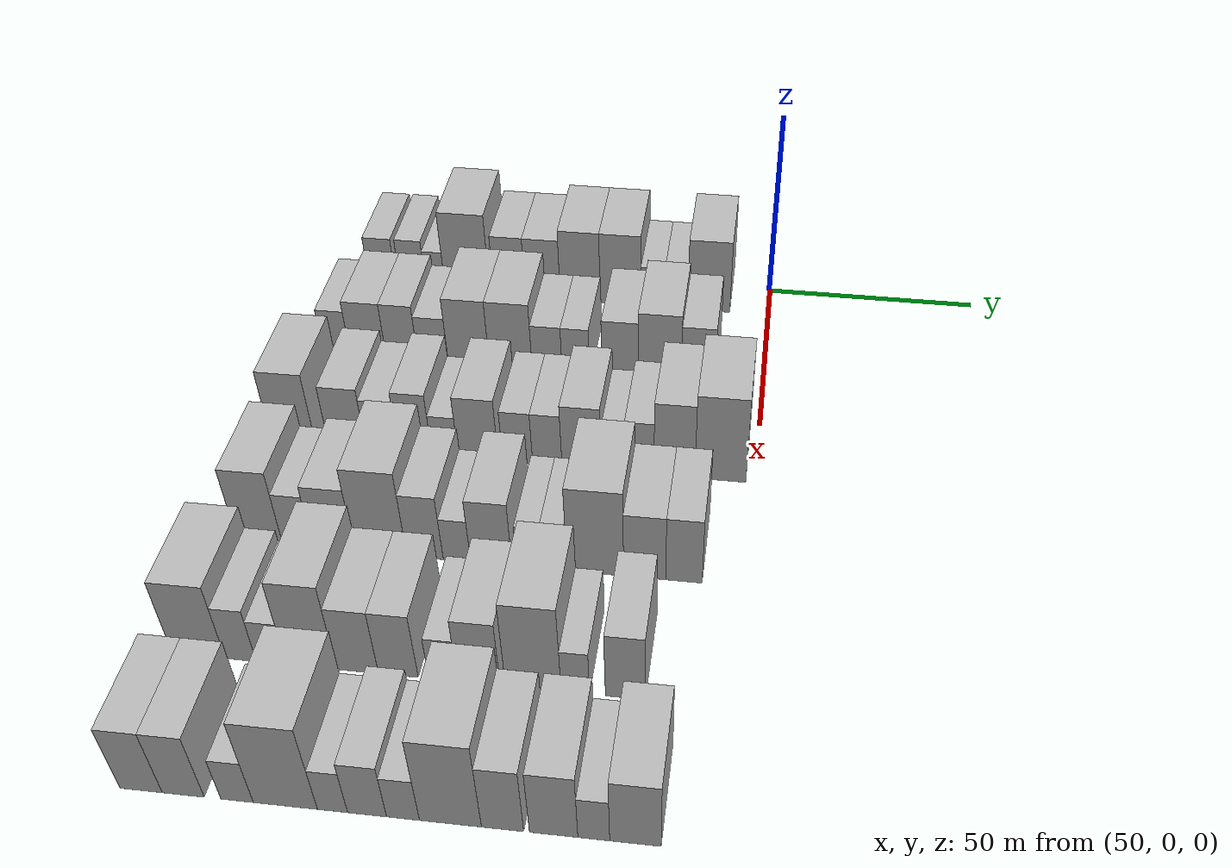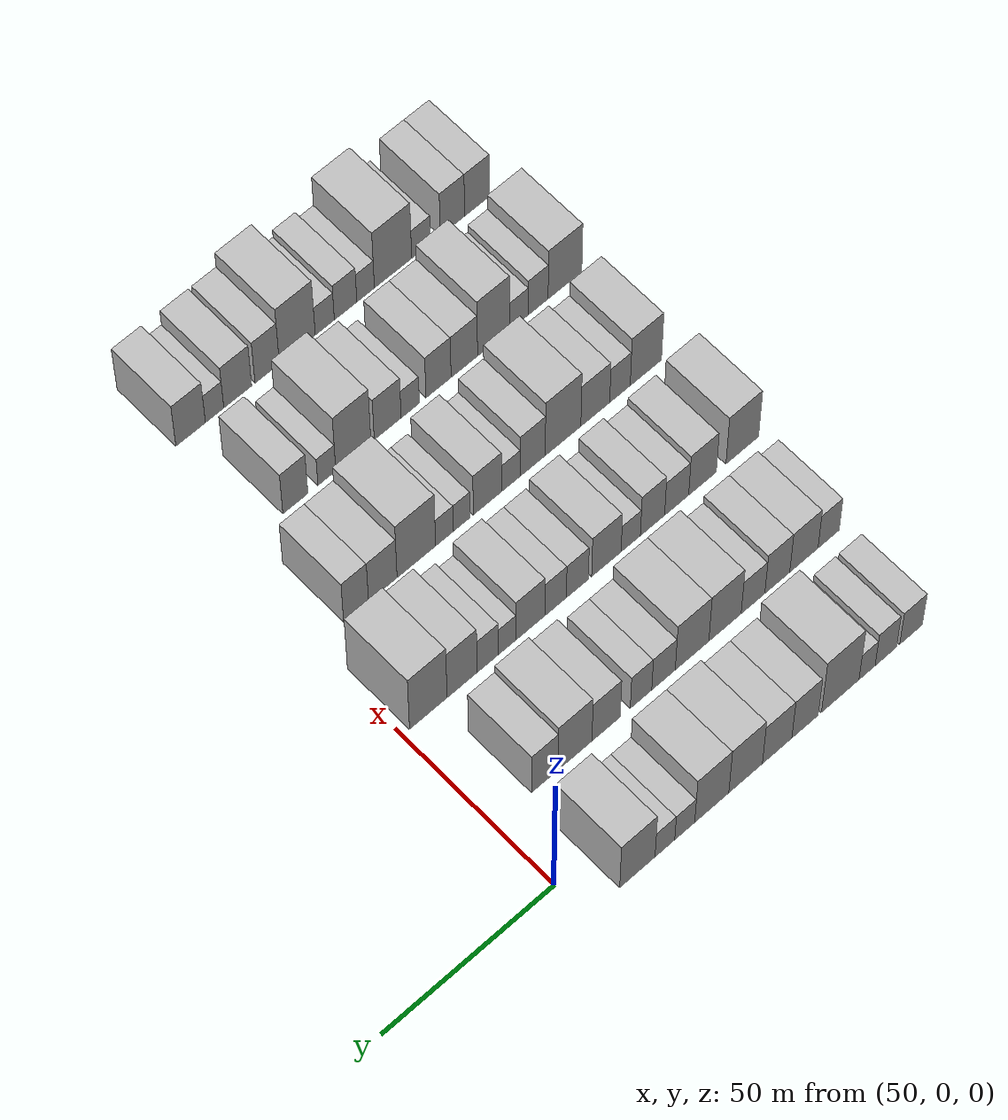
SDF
<sdf version="1.6">
 <world name="default">
  <model name="building_47">
   <static>1</static>
   <pose>50.0000 -97.5472 0 0.000000 0.000000 0.000000</pose>
   <link name="link">
    <pose>0 0 7.50 0 0 0</pose>
    <collision name="collision"><geometry><box><size>20.0000 7.0221 15.0000</size></box></geometry></collision>
    <visual name="visual">
     <cast_shadows>0</cast_shadows>
     <geometry><box><size>20.0000 7.0221 15.0000</size></box></geometry>
     <material>
      <script>
       <uri>model://HANNAS_wall/materials/scripts</uri>
       <uri>model://HANNAS_wall/materials/textures</uri>
       <name>vrc/HANNAS_wall</name>
      </script>
     </material>
    </visual>
   </link>
  </model>
  <model name="building_48">
   <static>1</static>
   <pose>50.0000 -89.7438 0 0.000000 0.000000 0.000000</pose>
   <link name="link">
    <pose>0 0 7.50 0 0 0</pose>
    <collision name="collision"><geometry><box><size>20.0000 6.5846 15.0000</size></box></geometry></collision>
    <visual name="visual">
     <cast_shadows>0</cast_shadows>
     <geometry><box><size>20.0000 6.5846 15.0000</size></box></geometry>
     <material>
      <script>
       <uri>model://HANNAS_wall/materials/scripts</uri>
       <uri>model://HANNAS_wall/materials/textures</uri>
       <name>vrc/HANNAS_wall</name>
      </script>
     </material>
    </visual>
   </link>
  </model>
  <model name="building_49">
   <static>1</static>
   <pose>50.0000 -83.9717 0 0.000000 0.000000 0.000000</pose>
   <link name="link">
    <pose>0 0 6.00 0 0 0</pose>
    <collision name="collision"><geometry><box><size>20.0000 4.9595 12.0000</size></box></geometry></collision>
    <visual name="visual">
     <cast_shadows>0</cast_shadows>
     <geometry><box><size>20.0000 4.9595 12.0000</size></box></geometry>
     <material>
      <script>
       <uri>model://HANNAS_wall/materials/scripts</uri>
       <uri>model://HANNAS_wall/materials/textures</uri>
       <name>vrc/HANNAS_wall</name>
      </script>
     </material>
    </visual>
   </link>
  </model>
  <model name="building_50">
   <static>1</static>
   <pose>50.0000 -75.7507 0 0.000000 0.000000 0.000000</pose>
   <link name="link">
    <pose>0 0 12.00 0 0 0</pose>
    <collision name="collision"><geometry><box><size>20.0000 11.4825 24.0000</size></box></geometry></collision>
    <visual name="visual">
     <cast_shadows>0</cast_shadows>
     <geometry><box><size>20.0000 11.4825 24.0000</size></box></geometry>
     <material>
      <script>
       <uri>model://HANNAS_wall/materials/scripts</uri>
       <uri>model://HANNAS_wall/materials/textures</uri>
       <name>vrc/HANNAS_wall</name>
      </script>
     </material>
    </visual>
   </link>
  </model>
  <model name="building_51">
   <static>1</static>
   <pose>50.0000 -64.9998 0 0.000000 0.000000 0.000000</pose>
   <link name="link">
    <pose>0 0 9.00 0 0 0</pose>
    <collision name="collision"><geometry><box><size>20.0000 8.0193 18.0000</size></box></geometry></collision>
    <visual name="visual">
     <cast_shadows>0</cast_shadows>
     <geometry><box><size>20.0000 8.0193 18.0000</size></box></geometry>
     <material>
      <script>
       <uri>model://HANNAS_wall/materials/scripts</uri>
       <uri>model://HANNAS_wall/materials/textures</uri>
       <name>vrc/HANNAS_wall</name>
      </script>
     </material>
    </visual>
   </link>
  </model>
  <model name="building_52">
   <static>1</static>
   <pose>50.0000 -56.5427 0 0.000000 0.000000 0.000000</pose>
   <link name="link">
    <pose>0 0 9.00 0 0 0</pose>
    <collision name="collision"><geometry><box><size>20.0000 8.8949 18.0000</size></box></geometry></collision>
    <visual name="visual">
     <cast_shadows>0</cast_shadows>
     <geometry><box><size>20.0000 8.8949 18.0000</size></box></geometry>
     <material>
      <script>
       <uri>model://HANNAS_wall/materials/scripts</uri>
       <uri>model://HANNAS_wall/materials/textures</uri>
       <name>vrc/HANNAS_wall</name>
      </script>
     </material>
    </visual>
   </link>
  </model>
  <model name="building_53">
   <static>1</static>
   <pose>50.0000 -47.0424 0 0.000000 0.000000 0.000000</pose>
   <link name="link">
    <pose>0 0 10.50 0 0 0</pose>
    <collision name="collision"><geometry><box><size>20.0000 10.1057 21.0000</size></box></geometry></collision>
    <visual name="visual">
     <cast_shadows>0</cast_shadows>
     <geometry><box><size>20.0000 10.1057 21.0000</size></box></geometry>
     <material>
      <script>
       <uri>model://HANNAS_wall/materials/scripts</uri>
       <uri>model://HANNAS_wall/materials/textures</uri>
       <name>vrc/HANNAS_wall</name>
      </script>
     </material>
    </visual>
   </link>
  </model>
  <model name="building_54">
   <static>1</static>
   <pose>50.0000 -36.8938 0 0.000000 0.000000 0.000000</pose>
   <link name="link">
    <pose>0 0 10.50 0 0 0</pose>
    <collision name="collision"><geometry><box><size>20.0000 10.1916 21.0000</size></box></geometry></collision>
    <visual name="visual">
     <cast_shadows>0</cast_shadows>
     <geometry><box><size>20.0000 10.1916 21.0000</size></box></geometry>
     <material>
      <script>
       <uri>model://HANNAS_wall/materials/scripts</uri>
       <uri>model://HANNAS_wall/materials/textures</uri>
       <name>vrc/HANNAS_wall</name>
      </script>
     </material>
    </visual>
   </link>
  </model>
  <model name="building_55">
   <static>1</static>
   <pose>50.0000 -28.8318 0 0.000000 0.000000 0.000000</pose>
   <link name="link">
    <pose>0 0 6.00 0 0 0</pose>
    <collision name="collision"><geometry><box><size>20.0000 5.9323 12.0000</size></box></geometry></collision>
    <visual name="visual">
     <cast_shadows>0</cast_shadows>
     <geometry><box><size>20.0000 5.9323 12.0000</size></box></geometry>
     <material>
      <script>
       <uri>model://HANNAS_wall/materials/scripts</uri>
       <uri>model://HANNAS_wall/materials/textures</uri>
       <name>vrc/HANNAS_wall</name>
      </script>
     </material>
    </visual>
   </link>
  </model>
  <model name="building_56">
   <static>1</static>
   <pose>50.0000 -22.9451 0 0.000000 0.000000 0.000000</pose>
   <link name="link">
    <pose>0 0 6.00 0 0 0</pose>
    <collision name="collision"><geometry><box><size>20.0000 5.8412 12.0000</size></box></geometry></collision>
    <visual name="visual">
     <cast_shadows>0</cast_shadows>
     <geometry><box><size>20.0000 5.8412 12.0000</size></box></geometry>
     <material>
      <script>
       <uri>model://HANNAS_wall/materials/scripts</uri>
       <uri>model://HANNAS_wall/materials/textures</uri>
       <name>vrc/HANNAS_wall</name>
      </script>
     </material>
    </visual>
   </link>
  </model>
  <model name="building_57">
   <static>1</static>
   <pose>50.0000 -14.8124 0 0.000000 0.000000 0.000000</pose>
   <link name="link">
    <pose>0 0 10.50 0 0 0</pose>
    <collision name="collision"><geometry><box><size>20.0000 10.4241 21.0000</size></box></geometry></collision>
    <visual name="visual">
     <cast_shadows>0</cast_shadows>
     <geometry><box><size>20.0000 10.4241 21.0000</size></box></geometry>
     <material>
      <script>
       <uri>model://HANNAS_wall/materials/scripts</uri>
       <uri>model://HANNAS_wall/materials/textures</uri>
       <name>vrc/HANNAS_wall</name>
      </script>
     </material>
    </visual>
   </link>
  </model>
  <model name="building_165">
   <static>1</static>
   <pose>79.0000 -100.9754 0 0.000000 0.000000 0.000000</pose>
   <link name="link">
    <pose>0 0 7.50 0 0 0</pose>
    <collision name="collision"><geometry><box><size>20.0000 6.5726 15.0000</size></box></geometry></collision>
    <visual name="visual">
     <cast_shadows>0</cast_shadows>
     <geometry><box><size>20.0000 6.5726 15.0000</size></box></geometry>
     <material>
      <script>
       <uri>model://HANNAS_wall/materials/scripts</uri>
       <uri>model://HANNAS_wall/materials/textures</uri>
       <name>vrc/HANNAS_wall</name>
      </script>
     </material>
    </visual>
   </link>
  </model>
  <model name="building_166">
   <static>1</static>
   <pose>79.0000 -93.3175 0 0.000000 0.000000 0.000000</pose>
   <link name="link">
    <pose>0 0 9.00 0 0 0</pose>
    <collision name="collision"><geometry><box><size>20.0000 8.7433 18.0000</size></box></geometry></collision>
    <visual name="visual">
     <cast_shadows>0</cast_shadows>
     <geometry><box><size>20.0000 8.7433 18.0000</size></box></geometry>
     <material>
      <script>
       <uri>model://HANNAS_wall/materials/scripts</uri>
       <uri>model://HANNAS_wall/materials/textures</uri>
       <name>vrc/HANNAS_wall</name>
      </script>
     </material>
    </visual>
   </link>
  </model>
  <model name="building_167">
   <static>1</static>
   <pose>79.0000 -85.1129 0 0.000000 0.000000 0.000000</pose>
   <link name="link">
    <pose>0 0 9.00 0 0 0</pose>
    <collision name="collision"><geometry><box><size>20.0000 7.6660 18.0000</size></box></geometry></collision>
    <visual name="visual">
     <cast_shadows>0</cast_shadows>
     <geometry><box><size>20.0000 7.6660 18.0000</size></box></geometry>
     <material>
      <script>
       <uri>model://HANNAS_wall/materials/scripts</uri>
       <uri>model://HANNAS_wall/materials/textures</uri>
       <name>vrc/HANNAS_wall</name>
      </script>
     </material>
    </visual>
   </link>
  </model>
  <model name="building_168">
   <static>1</static>
   <pose>79.0000 -77.6458 0 0.000000 0.000000 0.000000</pose>
   <link name="link">
    <pose>0 0 7.50 0 0 0</pose>
    <collision name="collision"><geometry><box><size>20.0000 7.2683 15.0000</size></box></geometry></collision>
    <visual name="visual">
     <cast_shadows>0</cast_shadows>
     <geometry><box><size>20.0000 7.2683 15.0000</size></box></geometry>
     <material>
      <script>
       <uri>model://HANNAS_wall/materials/scripts</uri>
       <uri>model://HANNAS_wall/materials/textures</uri>
       <name>vrc/HANNAS_wall</name>
      </script>
     </material>
    </visual>
   </link>
  </model>
  <model name="building_169">
   <static>1</static>
   <pose>79.0000 -69.0842 0 0.000000 0.000000 0.000000</pose>
   <link name="link">
    <pose>0 0 10.50 0 0 0</pose>
    <collision name="collision"><geometry><box><size>20.0000 9.8548 21.0000</size></box></geometry></collision>
    <visual name="visual">
     <cast_shadows>0</cast_shadows>
     <geometry><box><size>20.0000 9.8548 21.0000</size></box></geometry>
     <material>
      <script>
       <uri>model://HANNAS_wall/materials/scripts</uri>
       <uri>model://HANNAS_wall/materials/textures</uri>
       <name>vrc/HANNAS_wall</name>
      </script>
     </material>
    </visual>
   </link>
  </model>
  <model name="building_170">
   <static>1</static>
   <pose>79.0000 -59.0692 0 0.000000 0.000000 0.000000</pose>
   <link name="link">
    <pose>0 0 10.50 0 0 0</pose>
    <collision name="collision"><geometry><box><size>20.0000 10.1751 21.0000</size></box></geometry></collision>
    <visual name="visual">
     <cast_shadows>0</cast_shadows>
     <geometry><box><size>20.0000 10.1751 21.0000</size></box></geometry>
     <material>
      <script>
       <uri>model://HANNAS_wall/materials/scripts</uri>
       <uri>model://HANNAS_wall/materials/textures</uri>
       <name>vrc/HANNAS_wall</name>
      </script>
     </material>
    </visual>
   </link>
  </model>
  <model name="building_171">
   <static>1</static>
   <pose>79.0000 -50.4391 0 0.000000 0.000000 0.000000</pose>
   <link name="link">
    <pose>0 0 7.50 0 0 0</pose>
    <collision name="collision"><geometry><box><size>20.0000 7.0851 15.0000</size></box></geometry></collision>
    <visual name="visual">
     <cast_shadows>0</cast_shadows>
     <geometry><box><size>20.0000 7.0851 15.0000</size></box></geometry>
     <material>
      <script>
       <uri>model://HANNAS_wall/materials/scripts</uri>
       <uri>model://HANNAS_wall/materials/textures</uri>
       <name>vrc/HANNAS_wall</name>
      </script>
     </material>
    </visual>
   </link>
  </model>
  <model name="building_172">
   <static>1</static>
   <pose>79.0000 -43.6659 0 0.000000 0.000000 0.000000</pose>
   <link name="link">
    <pose>0 0 7.50 0 0 0</pose>
    <collision name="collision"><geometry><box><size>20.0000 6.4614 15.0000</size></box></geometry></collision>
    <visual name="visual">
     <cast_shadows>0</cast_shadows>
     <geometry><box><size>20.0000 6.4614 15.0000</size></box></geometry>
     <material>
      <script>
       <uri>model://HANNAS_wall/materials/scripts</uri>
       <uri>model://HANNAS_wall/materials/textures</uri>
       <name>vrc/HANNAS_wall</name>
      </script>
     </material>
    </visual>
   </link>
  </model>
  <model name="building_173">
   <static>1</static>
   <pose>79.0000 -33.2063 0 0.000000 0.000000 0.000000</pose>
   <link name="link">
    <pose>0 0 9.00 0 0 0</pose>
    <collision name="collision"><geometry><box><size>20.0000 8.4579 18.0000</size></box></geometry></collision>
    <visual name="visual">
     <cast_shadows>0</cast_shadows>
     <geometry><box><size>20.0000 8.4579 18.0000</size></box></geometry>
     <material>
      <script>
       <uri>model://HANNAS_wall/materials/scripts</uri>
       <uri>model://HANNAS_wall/materials/textures</uri>
       <name>vrc/HANNAS_wall</name>
      </script>
     </material>
    </visual>
   </link>
  </model>
  <model name="building_174">
   <static>1</static>
   <pose>79.0000 -23.9600 0 0.000000 0.000000 0.000000</pose>
   <link name="link">
    <pose>0 0 10.50 0 0 0</pose>
    <collision name="collision"><geometry><box><size>20.0000 10.0347 21.0000</size></box></geometry></collision>
    <visual name="visual">
     <cast_shadows>0</cast_shadows>
     <geometry><box><size>20.0000 10.0347 21.0000</size></box></geometry>
     <material>
      <script>
       <uri>model://HANNAS_wall/materials/scripts</uri>
       <uri>model://HANNAS_wall/materials/textures</uri>
       <name>vrc/HANNAS_wall</name>
      </script>
     </material>
    </visual>
   </link>
  </model>
  <model name="building_175">
   <static>1</static>
   <pose>79.0000 -15.0271 0 0.000000 0.000000 0.000000</pose>
   <link name="link">
    <pose>0 0 9.00 0 0 0</pose>
    <collision name="collision"><geometry><box><size>20.0000 7.8310 18.0000</size></box></geometry></collision>
    <visual name="visual">
     <cast_shadows>0</cast_shadows>
     <geometry><box><size>20.0000 7.8310 18.0000</size></box></geometry>
     <material>
      <script>
       <uri>model://HANNAS_wall/materials/scripts</uri>
       <uri>model://HANNAS_wall/materials/textures</uri>
       <name>vrc/HANNAS_wall</name>
      </script>
     </material>
    </visual>
   </link>
  </model>
  <model name="building_280">
   <static>1</static>
   <pose>108.0000 -102.6939 0 0.000000 0.000000 0.000000</pose>
   <link name="link">
    <pose>0 0 10.50 0 0 0</pose>
    <collision name="collision"><geometry><box><size>20.0000 10.1477 21.0000</size></box></geometry></collision>
    <visual name="visual">
     <cast_shadows>0</cast_shadows>
     <geometry><box><size>20.0000 10.1477 21.0000</size></box></geometry>
     <material>
      <script>
       <uri>model://HANNAS_wall/materials/scripts</uri>
       <uri>model://HANNAS_wall/materials/textures</uri>
       <name>vrc/HANNAS_wall</name>
      </script>
     </material>
    </visual>
   </link>
  </model>
  <model name="building_281">
   <static>1</static>
   <pose>108.0000 -90.3553 0 0.000000 0.000000 0.000000</pose>
   <link name="link">
    <pose>0 0 9.00 0 0 0</pose>
    <collision name="collision"><geometry><box><size>20.0000 8.5295 18.0000</size></box></geometry></collision>
    <visual name="visual">
     <cast_shadows>0</cast_shadows>
     <geometry><box><size>20.0000 8.5295 18.0000</size></box></geometry>
     <material>
      <script>
       <uri>model://HANNAS_wall/materials/scripts</uri>
       <uri>model://HANNAS_wall/materials/textures</uri>
       <name>vrc/HANNAS_wall</name>
      </script>
     </material>
    </visual>
   </link>
  </model>
  <model name="building_282">
   <static>1</static>
   <pose>108.0000 -82.3877 0 0.000000 0.000000 0.000000</pose>
   <link name="link">
    <pose>0 0 7.50 0 0 0</pose>
    <collision name="collision"><geometry><box><size>20.0000 7.4057 15.0000</size></box></geometry></collision>
    <visual name="visual">
     <cast_shadows>0</cast_shadows>
     <geometry><box><size>20.0000 7.4057 15.0000</size></box></geometry>
     <material>
      <script>
       <uri>model://HANNAS_wall/materials/scripts</uri>
       <uri>model://HANNAS_wall/materials/textures</uri>
       <name>vrc/HANNAS_wall</name>
      </script>
     </material>
    </visual>
   </link>
  </model>
  <model name="building_283">
   <static>1</static>
   <pose>108.0000 -74.9669 0 0.000000 0.000000 0.000000</pose>
   <link name="link">
    <pose>0 0 9.00 0 0 0</pose>
    <collision name="collision"><geometry><box><size>20.0000 7.4359 18.0000</size></box></geometry></collision>
    <visual name="visual">
     <cast_shadows>0</cast_shadows>
     <geometry><box><size>20.0000 7.4359 18.0000</size></box></geometry>
     <material>
      <script>
       <uri>model://HANNAS_wall/materials/scripts</uri>
       <uri>model://HANNAS_wall/materials/textures</uri>
       <name>vrc/HANNAS_wall</name>
      </script>
     </material>
    </visual>
   </link>
  </model>
  <model name="building_284">
   <static>1</static>
   <pose>108.0000 -68.3087 0 0.000000 0.000000 0.000000</pose>
   <link name="link">
    <pose>0 0 6.00 0 0 0</pose>
    <collision name="collision"><geometry><box><size>20.0000 5.8803 12.0000</size></box></geometry></collision>
    <visual name="visual">
     <cast_shadows>0</cast_shadows>
     <geometry><box><size>20.0000 5.8803 12.0000</size></box></geometry>
     <material>
      <script>
       <uri>model://HANNAS_wall/materials/scripts</uri>
       <uri>model://HANNAS_wall/materials/textures</uri>
       <name>vrc/HANNAS_wall</name>
      </script>
     </material>
    </visual>
   </link>
  </model>
  <model name="building_285">
   <static>1</static>
   <pose>108.0000 -60.8905 0 0.000000 0.000000 0.000000</pose>
   <link name="link">
    <pose>0 0 9.00 0 0 0</pose>
    <collision name="collision"><geometry><box><size>20.0000 8.9561 18.0000</size></box></geometry></collision>
    <visual name="visual">
     <cast_shadows>0</cast_shadows>
     <geometry><box><size>20.0000 8.9561 18.0000</size></box></geometry>
     <material>
      <script>
       <uri>model://HANNAS_wall/materials/scripts</uri>
       <uri>model://HANNAS_wall/materials/textures</uri>
       <name>vrc/HANNAS_wall</name>
      </script>
     </material>
    </visual>
   </link>
  </model>
  <model name="building_286">
   <static>1</static>
   <pose>108.0000 -52.0968 0 0.000000 0.000000 0.000000</pose>
   <link name="link">
    <pose>0 0 7.50 0 0 0</pose>
    <collision name="collision"><geometry><box><size>20.0000 6.6314 15.0000</size></box></geometry></collision>
    <visual name="visual">
     <cast_shadows>0</cast_shadows>
     <geometry><box><size>20.0000 6.6314 15.0000</size></box></geometry>
     <material>
      <script>
       <uri>model://HANNAS_wall/materials/scripts</uri>
       <uri>model://HANNAS_wall/materials/textures</uri>
       <name>vrc/HANNAS_wall</name>
      </script>
     </material>
    </visual>
   </link>
  </model>
  <model name="building_287">
   <static>1</static>
   <pose>108.0000 -45.5331 0 0.000000 0.000000 0.000000</pose>
   <link name="link">
    <pose>0 0 7.50 0 0 0</pose>
    <collision name="collision"><geometry><box><size>20.0000 6.4959 15.0000</size></box></geometry></collision>
    <visual name="visual">
     <cast_shadows>0</cast_shadows>
     <geometry><box><size>20.0000 6.4959 15.0000</size></box></geometry>
     <material>
      <script>
       <uri>model://HANNAS_wall/materials/scripts</uri>
       <uri>model://HANNAS_wall/materials/textures</uri>
       <name>vrc/HANNAS_wall</name>
      </script>
     </material>
    </visual>
   </link>
  </model>
  <model name="building_288">
   <static>1</static>
   <pose>108.0000 -37.9837 0 0.000000 0.000000 0.000000</pose>
   <link name="link">
    <pose>0 0 9.00 0 0 0</pose>
    <collision name="collision"><geometry><box><size>20.0000 8.6028 18.0000</size></box></geometry></collision>
    <visual name="visual">
     <cast_shadows>0</cast_shadows>
     <geometry><box><size>20.0000 8.6028 18.0000</size></box></geometry>
     <material>
      <script>
       <uri>model://HANNAS_wall/materials/scripts</uri>
       <uri>model://HANNAS_wall/materials/textures</uri>
       <name>vrc/HANNAS_wall</name>
      </script>
     </material>
    </visual>
   </link>
  </model>
  <model name="building_289">
   <static>1</static>
   <pose>108.0000 -31.0672 0 0.000000 0.000000 0.000000</pose>
   <link name="link">
    <pose>0 0 6.00 0 0 0</pose>
    <collision name="collision"><geometry><box><size>20.0000 5.2302 12.0000</size></box></geometry></collision>
    <visual name="visual">
     <cast_shadows>0</cast_shadows>
     <geometry><box><size>20.0000 5.2302 12.0000</size></box></geometry>
     <material>
      <script>
       <uri>model://HANNAS_wall/materials/scripts</uri>
       <uri>model://HANNAS_wall/materials/textures</uri>
       <name>vrc/HANNAS_wall</name>
      </script>
     </material>
    </visual>
   </link>
  </model>
  <model name="building_290">
   <static>1</static>
   <pose>108.0000 -25.2629 0 0.000000 0.000000 0.000000</pose>
   <link name="link">
    <pose>0 0 7.50 0 0 0</pose>
    <collision name="collision"><geometry><box><size>20.0000 6.3784 15.0000</size></box></geometry></collision>
    <visual name="visual">
     <cast_shadows>0</cast_shadows>
     <geometry><box><size>20.0000 6.3784 15.0000</size></box></geometry>
     <material>
      <script>
       <uri>model://HANNAS_wall/materials/scripts</uri>
       <uri>model://HANNAS_wall/materials/textures</uri>
       <name>vrc/HANNAS_wall</name>
      </script>
     </material>
    </visual>
   </link>
  </model>
  <model name="building_291">
   <static>1</static>
   <pose>108.0000 -17.6246 0 0.000000 0.000000 0.000000</pose>
   <link name="link">
    <pose>0 0 10.50 0 0 0</pose>
    <collision name="collision"><geometry><box><size>20.0000 8.8982 21.0000</size></box></geometry></collision>
    <visual name="visual">
     <cast_shadows>0</cast_shadows>
     <geometry><box><size>20.0000 8.8982 21.0000</size></box></geometry>
     <material>
      <script>
       <uri>model://HANNAS_wall/materials/scripts</uri>
       <uri>model://HANNAS_wall/materials/textures</uri>
       <name>vrc/HANNAS_wall</name>
      </script>
     </material>
    </visual>
   </link>
  </model>
  <model name="building_292">
   <static>1</static>
   <pose>108.0000 -7.6535 0 0.000000 0.000000 0.000000</pose>
   <link name="link">
    <pose>0 0 12.00 0 0 0</pose>
    <collision name="collision"><geometry><box><size>20.0000 11.0440 24.0000</size></box></geometry></collision>
    <visual name="visual">
     <cast_shadows>0</cast_shadows>
     <geometry><box><size>20.0000 11.0440 24.0000</size></box></geometry>
     <material>
      <script>
       <uri>model://HANNAS_wall/materials/scripts</uri>
       <uri>model://HANNAS_wall/materials/textures</uri>
       <name>vrc/HANNAS_wall</name>
      </script>
     </material>
    </visual>
   </link>
  </model>
  <model name="building_396">
   <static>1</static>
   <pose>137.0000 -100.7394 0 0.000000 0.000000 0.000000</pose>
   <link name="link">
    <pose>0 0 10.50 0 0 0</pose>
    <collision name="collision"><geometry><box><size>20.0000 9.7139 21.0000</size></box></geometry></collision>
    <visual name="visual">
     <cast_shadows>0</cast_shadows>
     <geometry><box><size>20.0000 9.7139 21.0000</size></box></geometry>
     <material>
      <script>
       <uri>model://HANNAS_wall/materials/scripts</uri>
       <uri>model://HANNAS_wall/materials/textures</uri>
       <name>vrc/HANNAS_wall</name>
      </script>
     </material>
    </visual>
   </link>
  </model>
  <model name="building_397">
   <static>1</static>
   <pose>137.0000 -92.7031 0 0.000000 0.000000 0.000000</pose>
   <link name="link">
    <pose>0 0 7.50 0 0 0</pose>
    <collision name="collision"><geometry><box><size>20.0000 6.3588 15.0000</size></box></geometry></collision>
    <visual name="visual">
     <cast_shadows>0</cast_shadows>
     <geometry><box><size>20.0000 6.3588 15.0000</size></box></geometry>
     <material>
      <script>
       <uri>model://HANNAS_wall/materials/scripts</uri>
       <uri>model://HANNAS_wall/materials/textures</uri>
       <name>vrc/HANNAS_wall</name>
      </script>
     </material>
    </visual>
   </link>
  </model>
  <model name="building_398">
   <static>1</static>
   <pose>137.0000 -85.0697 0 0.000000 0.000000 0.000000</pose>
   <link name="link">
    <pose>0 0 9.00 0 0 0</pose>
    <collision name="collision"><geometry><box><size>20.0000 8.9081 18.0000</size></box></geometry></collision>
    <visual name="visual">
     <cast_shadows>0</cast_shadows>
     <geometry><box><size>20.0000 8.9081 18.0000</size></box></geometry>
     <material>
      <script>
       <uri>model://HANNAS_wall/materials/scripts</uri>
       <uri>model://HANNAS_wall/materials/textures</uri>
       <name>vrc/HANNAS_wall</name>
      </script>
     </material>
    </visual>
   </link>
  </model>
  <model name="building_399">
   <static>1</static>
   <pose>137.0000 -75.1561 0 0.000000 0.000000 0.000000</pose>
   <link name="link">
    <pose>0 0 12.00 0 0 0</pose>
    <collision name="collision"><geometry><box><size>20.0000 10.9192 24.0000</size></box></geometry></collision>
    <visual name="visual">
     <cast_shadows>0</cast_shadows>
     <geometry><box><size>20.0000 10.9192 24.0000</size></box></geometry>
     <material>
      <script>
       <uri>model://HANNAS_wall/materials/scripts</uri>
       <uri>model://HANNAS_wall/materials/textures</uri>
       <name>vrc/HANNAS_wall</name>
      </script>
     </material>
    </visual>
   </link>
  </model>
  <model name="building_400">
   <static>1</static>
   <pose>137.0000 -65.9087 0 0.000000 0.000000 0.000000</pose>
   <link name="link">
    <pose>0 0 9.00 0 0 0</pose>
    <collision name="collision"><geometry><box><size>20.0000 7.5755 18.0000</size></box></geometry></collision>
    <visual name="visual">
     <cast_shadows>0</cast_shadows>
     <geometry><box><size>20.0000 7.5755 18.0000</size></box></geometry>
     <material>
      <script>
       <uri>model://HANNAS_wall/materials/scripts</uri>
       <uri>model://HANNAS_wall/materials/textures</uri>
       <name>vrc/HANNAS_wall</name>
      </script>
     </material>
    </visual>
   </link>
  </model>
  <model name="building_401">
   <static>1</static>
   <pose>137.0000 -59.2748 0 0.000000 0.000000 0.000000</pose>
   <link name="link">
    <pose>0 0 6.00 0 0 0</pose>
    <collision name="collision"><geometry><box><size>20.0000 5.6922 12.0000</size></box></geometry></collision>
    <visual name="visual">
     <cast_shadows>0</cast_shadows>
     <geometry><box><size>20.0000 5.6922 12.0000</size></box></geometry>
     <material>
      <script>
       <uri>model://HANNAS_wall/materials/scripts</uri>
       <uri>model://HANNAS_wall/materials/textures</uri>
       <name>vrc/HANNAS_wall</name>
      </script>
     </material>
    </visual>
   </link>
  </model>
  <model name="building_402">
   <static>1</static>
   <pose>137.0000 -52.1464 0 0.000000 0.000000 0.000000</pose>
   <link name="link">
    <pose>0 0 9.00 0 0 0</pose>
    <collision name="collision"><geometry><box><size>20.0000 8.5647 18.0000</size></box></geometry></collision>
    <visual name="visual">
     <cast_shadows>0</cast_shadows>
     <geometry><box><size>20.0000 8.5647 18.0000</size></box></geometry>
     <material>
      <script>
       <uri>model://HANNAS_wall/materials/scripts</uri>
       <uri>model://HANNAS_wall/materials/textures</uri>
       <name>vrc/HANNAS_wall</name>
      </script>
     </material>
    </visual>
   </link>
  </model>
  <model name="building_403">
   <static>1</static>
   <pose>137.0000 -44.3724 0 0.000000 0.000000 0.000000</pose>
   <link name="link">
    <pose>0 0 6.00 0 0 0</pose>
    <collision name="collision"><geometry><box><size>20.0000 4.9834 12.0000</size></box></geometry></collision>
    <visual name="visual">
     <cast_shadows>0</cast_shadows>
     <geometry><box><size>20.0000 4.9834 12.0000</size></box></geometry>
     <material>
      <script>
       <uri>model://HANNAS_wall/materials/scripts</uri>
       <uri>model://HANNAS_wall/materials/textures</uri>
       <name>vrc/HANNAS_wall</name>
      </script>
     </material>
    </visual>
   </link>
  </model>
  <model name="building_404">
   <static>1</static>
   <pose>137.0000 -39.1954 0 0.000000 0.000000 0.000000</pose>
   <link name="link">
    <pose>0 0 6.00 0 0 0</pose>
    <collision name="collision"><geometry><box><size>20.0000 5.3706 12.0000</size></box></geometry></collision>
    <visual name="visual">
     <cast_shadows>0</cast_shadows>
     <geometry><box><size>20.0000 5.3706 12.0000</size></box></geometry>
     <material>
      <script>
       <uri>model://HANNAS_wall/materials/scripts</uri>
       <uri>model://HANNAS_wall/materials/textures</uri>
       <name>vrc/HANNAS_wall</name>
      </script>
     </material>
    </visual>
   </link>
  </model>
  <model name="building_405">
   <static>1</static>
   <pose>137.0000 -30.7564 0 0.000000 0.000000 0.000000</pose>
   <link name="link">
    <pose>0 0 12.00 0 0 0</pose>
    <collision name="collision"><geometry><box><size>20.0000 11.5075 24.0000</size></box></geometry></collision>
    <visual name="visual">
     <cast_shadows>0</cast_shadows>
     <geometry><box><size>20.0000 11.5075 24.0000</size></box></geometry>
     <material>
      <script>
       <uri>model://HANNAS_wall/materials/scripts</uri>
       <uri>model://HANNAS_wall/materials/textures</uri>
       <name>vrc/HANNAS_wall</name>
      </script>
     </material>
    </visual>
   </link>
  </model>
  <model name="building_406">
   <static>1</static>
   <pose>137.0000 -20.7547 0 0.000000 0.000000 0.000000</pose>
   <link name="link">
    <pose>0 0 9.00 0 0 0</pose>
    <collision name="collision"><geometry><box><size>20.0000 8.4959 18.0000</size></box></geometry></collision>
    <visual name="visual">
     <cast_shadows>0</cast_shadows>
     <geometry><box><size>20.0000 8.4959 18.0000</size></box></geometry>
     <material>
      <script>
       <uri>model://HANNAS_wall/materials/scripts</uri>
       <uri>model://HANNAS_wall/materials/textures</uri>
       <name>vrc/HANNAS_wall</name>
      </script>
     </material>
    </visual>
   </link>
  </model>
  <model name="building_407">
   <static>1</static>
   <pose>137.0000 -12.8250 0 0.000000 0.000000 0.000000</pose>
   <link name="link">
    <pose>0 0 9.00 0 0 0</pose>
    <collision name="collision"><geometry><box><size>20.0000 7.3635 18.0000</size></box></geometry></collision>
    <visual name="visual">
     <cast_shadows>0</cast_shadows>
     <geometry><box><size>20.0000 7.3635 18.0000</size></box></geometry>
     <material>
      <script>
       <uri>model://HANNAS_wall/materials/scripts</uri>
       <uri>model://HANNAS_wall/materials/textures</uri>
       <name>vrc/HANNAS_wall</name>
      </script>
     </material>
    </visual>
   </link>
  </model>
  <model name="building_512">
   <static>1</static>
   <pose>166.0000 -103.1205 0 0.000000 0.000000 0.000000</pose>
   <link name="link">
    <pose>0 0 10.50 0 0 0</pose>
    <collision name="collision"><geometry><box><size>20.0000 10.4982 21.0000</size></box></geometry></collision>
    <visual name="visual">
     <cast_shadows>0</cast_shadows>
     <geometry><box><size>20.0000 10.4982 21.0000</size></box></geometry>
     <material>
      <script>
       <uri>model://HANNAS_wall/materials/scripts</uri>
       <uri>model://HANNAS_wall/materials/textures</uri>
       <name>vrc/HANNAS_wall</name>
      </script>
     </material>
    </visual>
   </link>
  </model>
  <model name="building_513">
   <static>1</static>
   <pose>166.0000 -94.8028 0 0.000000 0.000000 0.000000</pose>
   <link name="link">
    <pose>0 0 7.50 0 0 0</pose>
    <collision name="collision"><geometry><box><size>20.0000 6.1372 15.0000</size></box></geometry></collision>
    <visual name="visual">
     <cast_shadows>0</cast_shadows>
     <geometry><box><size>20.0000 6.1372 15.0000</size></box></geometry>
     <material>
      <script>
       <uri>model://HANNAS_wall/materials/scripts</uri>
       <uri>model://HANNAS_wall/materials/textures</uri>
       <name>vrc/HANNAS_wall</name>
      </script>
     </material>
    </visual>
   </link>
  </model>
  <model name="building_514">
   <static>1</static>
   <pose>166.0000 -88.8101 0 0.000000 0.000000 0.000000</pose>
   <link name="link">
    <pose>0 0 6.00 0 0 0</pose>
    <collision name="collision"><geometry><box><size>20.0000 5.8483 12.0000</size></box></geometry></collision>
    <visual name="visual">
     <cast_shadows>0</cast_shadows>
     <geometry><box><size>20.0000 5.8483 12.0000</size></box></geometry>
     <material>
      <script>
       <uri>model://HANNAS_wall/materials/scripts</uri>
       <uri>model://HANNAS_wall/materials/textures</uri>
       <name>vrc/HANNAS_wall</name>
      </script>
     </material>
    </visual>
   </link>
  </model>
  <model name="building_515">
   <static>1</static>
   <pose>166.0000 -80.9783 0 0.000000 0.000000 0.000000</pose>
   <link name="link">
    <pose>0 0 12.00 0 0 0</pose>
    <collision name="collision"><geometry><box><size>20.0000 9.8152 24.0000</size></box></geometry></collision>
    <visual name="visual">
     <cast_shadows>0</cast_shadows>
     <geometry><box><size>20.0000 9.8152 24.0000</size></box></geometry>
     <material>
      <script>
       <uri>model://HANNAS_wall/materials/scripts</uri>
       <uri>model://HANNAS_wall/materials/textures</uri>
       <name>vrc/HANNAS_wall</name>
      </script>
     </material>
    </visual>
   </link>
  </model>
  <model name="building_516">
   <static>1</static>
   <pose>166.0000 -72.0120 0 0.000000 0.000000 0.000000</pose>
   <link name="link">
    <pose>0 0 9.00 0 0 0</pose>
    <collision name="collision"><geometry><box><size>20.0000 8.1174 18.0000</size></box></geometry></collision>
    <visual name="visual">
     <cast_shadows>0</cast_shadows>
     <geometry><box><size>20.0000 8.1174 18.0000</size></box></geometry>
     <material>
      <script>
       <uri>model://HANNAS_wall/materials/scripts</uri>
       <uri>model://HANNAS_wall/materials/textures</uri>
       <name>vrc/HANNAS_wall</name>
      </script>
     </material>
    </visual>
   </link>
  </model>
  <model name="building_517">
   <static>1</static>
   <pose>166.0000 -64.1182 0 0.000000 0.000000 0.000000</pose>
   <link name="link">
    <pose>0 0 9.00 0 0 0</pose>
    <collision name="collision"><geometry><box><size>20.0000 7.6702 18.0000</size></box></geometry></collision>
    <visual name="visual">
     <cast_shadows>0</cast_shadows>
     <geometry><box><size>20.0000 7.6702 18.0000</size></box></geometry>
     <material>
      <script>
       <uri>model://HANNAS_wall/materials/scripts</uri>
       <uri>model://HANNAS_wall/materials/textures</uri>
       <name>vrc/HANNAS_wall</name>
      </script>
     </material>
    </visual>
   </link>
  </model>
  <model name="building_518">
   <static>1</static>
   <pose>166.0000 -55.5136 0 0.000000 0.000000 0.000000</pose>
   <link name="link">
    <pose>0 0 6.00 0 0 0</pose>
    <collision name="collision"><geometry><box><size>20.0000 5.5392 12.0000</size></box></geometry></collision>
    <visual name="visual">
     <cast_shadows>0</cast_shadows>
     <geometry><box><size>20.0000 5.5392 12.0000</size></box></geometry>
     <material>
      <script>
       <uri>model://HANNAS_wall/materials/scripts</uri>
       <uri>model://HANNAS_wall/materials/textures</uri>
       <name>vrc/HANNAS_wall</name>
      </script>
     </material>
    </visual>
   </link>
  </model>
  <model name="building_519">
   <static>1</static>
   <pose>166.0000 -48.6749 0 0.000000 0.000000 0.000000</pose>
   <link name="link">
    <pose>0 0 9.00 0 0 0</pose>
    <collision name="collision"><geometry><box><size>20.0000 8.1382 18.0000</size></box></geometry></collision>
    <visual name="visual">
     <cast_shadows>0</cast_shadows>
     <geometry><box><size>20.0000 8.1382 18.0000</size></box></geometry>
     <material>
      <script>
       <uri>model://HANNAS_wall/materials/scripts</uri>
       <uri>model://HANNAS_wall/materials/textures</uri>
       <name>vrc/HANNAS_wall</name>
      </script>
     </material>
    </visual>
   </link>
  </model>
  <model name="building_520">
   <static>1</static>
   <pose>166.0000 -38.3354 0 0.000000 0.000000 0.000000</pose>
   <link name="link">
    <pose>0 0 12.00 0 0 0</pose>
    <collision name="collision"><geometry><box><size>20.0000 10.5408 24.0000</size></box></geometry></collision>
    <visual name="visual">
     <cast_shadows>0</cast_shadows>
     <geometry><box><size>20.0000 10.5408 24.0000</size></box></geometry>
     <material>
      <script>
       <uri>model://HANNAS_wall/materials/scripts</uri>
       <uri>model://HANNAS_wall/materials/textures</uri>
       <name>vrc/HANNAS_wall</name>
      </script>
     </material>
    </visual>
   </link>
  </model>
  <model name="building_521">
   <static>1</static>
   <pose>166.0000 -30.3938 0 0.000000 0.000000 0.000000</pose>
   <link name="link">
    <pose>0 0 6.00 0 0 0</pose>
    <collision name="collision"><geometry><box><size>20.0000 5.3424 12.0000</size></box></geometry></collision>
    <visual name="visual">
     <cast_shadows>0</cast_shadows>
     <geometry><box><size>20.0000 5.3424 12.0000</size></box></geometry>
     <material>
      <script>
       <uri>model://HANNAS_wall/materials/scripts</uri>
       <uri>model://HANNAS_wall/materials/textures</uri>
       <name>vrc/HANNAS_wall</name>
      </script>
     </material>
    </visual>
   </link>
  </model>
  <model name="building_522">
   <static>1</static>
   <pose>166.0000 -20.9950 0 0.000000 0.000000 0.000000</pose>
   <link name="link">
    <pose>0 0 9.00 0 0 0</pose>
    <collision name="collision"><geometry><box><size>20.0000 7.4552 18.0000</size></box></geometry></collision>
    <visual name="visual">
     <cast_shadows>0</cast_shadows>
     <geometry><box><size>20.0000 7.4552 18.0000</size></box></geometry>
     <material>
      <script>
       <uri>model://HANNAS_wall/materials/scripts</uri>
       <uri>model://HANNAS_wall/materials/textures</uri>
       <name>vrc/HANNAS_wall</name>
      </script>
     </material>
    </visual>
   </link>
  </model>
  <model name="building_625">
   <static>1</static>
   <pose>195.0000 -102.8336 0 0.000000 0.000000 0.000000</pose>
   <link name="link">
    <pose>0 0 9.00 0 0 0</pose>
    <collision name="collision"><geometry><box><size>20.0000 7.7368 18.0000</size></box></geometry></collision>
    <visual name="visual">
     <cast_shadows>0</cast_shadows>
     <geometry><box><size>20.0000 7.7368 18.0000</size></box></geometry>
     <material>
      <script>
       <uri>model://HANNAS_wall/materials/scripts</uri>
       <uri>model://HANNAS_wall/materials/textures</uri>
       <name>vrc/HANNAS_wall</name>
      </script>
     </material>
    </visual>
   </link>
  </model>
  <model name="building_626">
   <static>1</static>
   <pose>195.0000 -95.1652 0 0.000000 0.000000 0.000000</pose>
   <link name="link">
    <pose>0 0 9.00 0 0 0</pose>
    <collision name="collision"><geometry><box><size>20.0000 7.6000 18.0000</size></box></geometry></collision>
    <visual name="visual">
     <cast_shadows>0</cast_shadows>
     <geometry><box><size>20.0000 7.6000 18.0000</size></box></geometry>
     <material>
      <script>
       <uri>model://HANNAS_wall/materials/scripts</uri>
       <uri>model://HANNAS_wall/materials/textures</uri>
       <name>vrc/HANNAS_wall</name>
      </script>
     </material>
    </visual>
   </link>
  </model>
  <model name="building_627">
   <static>1</static>
   <pose>195.0000 -85.4507 0 0.000000 0.000000 0.000000</pose>
   <link name="link">
    <pose>0 0 6.00 0 0 0</pose>
    <collision name="collision"><geometry><box><size>20.0000 5.8290 12.0000</size></box></geometry></collision>
    <visual name="visual">
     <cast_shadows>0</cast_shadows>
     <geometry><box><size>20.0000 5.8290 12.0000</size></box></geometry>
     <material>
      <script>
       <uri>model://HANNAS_wall/materials/scripts</uri>
       <uri>model://HANNAS_wall/materials/textures</uri>
       <name>vrc/HANNAS_wall</name>
      </script>
     </material>
    </visual>
   </link>
  </model>
  <model name="building_628">
   <static>1</static>
   <pose>195.0000 -76.7987 0 0.000000 0.000000 0.000000</pose>
   <link name="link">
    <pose>0 0 12.00 0 0 0</pose>
    <collision name="collision"><geometry><box><size>20.0000 11.4750 24.0000</size></box></geometry></collision>
    <visual name="visual">
     <cast_shadows>0</cast_shadows>
     <geometry><box><size>20.0000 11.4750 24.0000</size></box></geometry>
     <material>
      <script>
       <uri>model://HANNAS_wall/materials/scripts</uri>
       <uri>model://HANNAS_wall/materials/textures</uri>
       <name>vrc/HANNAS_wall</name>
      </script>
     </material>
    </visual>
   </link>
  </model>
  <model name="building_629">
   <static>1</static>
   <pose>195.0000 -68.3753 0 0.000000 0.000000 0.000000</pose>
   <link name="link">
    <pose>0 0 6.00 0 0 0</pose>
    <collision name="collision"><geometry><box><size>20.0000 5.3718 12.0000</size></box></geometry></collision>
    <visual name="visual">
     <cast_shadows>0</cast_shadows>
     <geometry><box><size>20.0000 5.3718 12.0000</size></box></geometry>
     <material>
      <script>
       <uri>model://HANNAS_wall/materials/scripts</uri>
       <uri>model://HANNAS_wall/materials/textures</uri>
       <name>vrc/HANNAS_wall</name>
      </script>
     </material>
    </visual>
   </link>
  </model>
  <model name="building_630">
   <static>1</static>
   <pose>195.0000 -62.2480 0 0.000000 0.000000 0.000000</pose>
   <link name="link">
    <pose>0 0 7.50 0 0 0</pose>
    <collision name="collision"><geometry><box><size>20.0000 6.8828 15.0000</size></box></geometry></collision>
    <visual name="visual">
     <cast_shadows>0</cast_shadows>
     <geometry><box><size>20.0000 6.8828 15.0000</size></box></geometry>
     <material>
      <script>
       <uri>model://HANNAS_wall/materials/scripts</uri>
       <uri>model://HANNAS_wall/materials/textures</uri>
       <name>vrc/HANNAS_wall</name>
      </script>
     </material>
    </visual>
   </link>
  </model>
  <model name="building_631">
   <static>1</static>
   <pose>195.0000 -55.9090 0 0.000000 0.000000 0.000000</pose>
   <link name="link">
    <pose>0 0 6.00 0 0 0</pose>
    <collision name="collision"><geometry><box><size>20.0000 5.7951 12.0000</size></box></geometry></collision>
    <visual name="visual">
     <cast_shadows>0</cast_shadows>
     <geometry><box><size>20.0000 5.7951 12.0000</size></box></geometry>
     <material>
      <script>
       <uri>model://HANNAS_wall/materials/scripts</uri>
       <uri>model://HANNAS_wall/materials/textures</uri>
       <name>vrc/HANNAS_wall</name>
      </script>
     </material>
    </visual>
   </link>
  </model>
  <model name="building_632">
   <static>1</static>
   <pose>195.0000 -47.5878 0 0.000000 0.000000 0.000000</pose>
   <link name="link">
    <pose>0 0 12.00 0 0 0</pose>
    <collision name="collision"><geometry><box><size>20.0000 10.8474 24.0000</size></box></geometry></collision>
    <visual name="visual">
     <cast_shadows>0</cast_shadows>
     <geometry><box><size>20.0000 10.8474 24.0000</size></box></geometry>
     <material>
      <script>
       <uri>model://HANNAS_wall/materials/scripts</uri>
       <uri>model://HANNAS_wall/materials/textures</uri>
       <name>vrc/HANNAS_wall</name>
      </script>
     </material>
    </visual>
   </link>
  </model>
  <model name="building_633">
   <static>1</static>
   <pose>195.0000 -38.4945 0 0.000000 0.000000 0.000000</pose>
   <link name="link">
    <pose>0 0 9.00 0 0 0</pose>
    <collision name="collision"><geometry><box><size>20.0000 7.3392 18.0000</size></box></geometry></collision>
    <visual name="visual">
     <cast_shadows>0</cast_shadows>
     <geometry><box><size>20.0000 7.3392 18.0000</size></box></geometry>
     <material>
      <script>
       <uri>model://HANNAS_wall/materials/scripts</uri>
       <uri>model://HANNAS_wall/materials/textures</uri>
       <name>vrc/HANNAS_wall</name>
      </script>
     </material>
    </visual>
   </link>
  </model>
  <model name="building_634">
   <static>1</static>
   <pose>195.0000 -29.6497 0 0.000000 0.000000 0.000000</pose>
   <link name="link">
    <pose>0 0 9.00 0 0 0</pose>
    <collision name="collision"><geometry><box><size>20.0000 8.3504 18.0000</size></box></geometry></collision>
    <visual name="visual">
     <cast_shadows>0</cast_shadows>
     <geometry><box><size>20.0000 8.3504 18.0000</size></box></geometry>
     <material>
      <script>
       <uri>model://HANNAS_wall/materials/scripts</uri>
       <uri>model://HANNAS_wall/materials/textures</uri>
       <name>vrc/HANNAS_wall</name>
      </script>
     </material>
    </visual>
   </link>
  </model>
  <model name="building_635">
   <static>1</static>
   <pose>195.0000 -22.7395 0 0.000000 0.000000 0.000000</pose>
   <link name="link">
    <pose>0 0 6.00 0 0 0</pose>
    <collision name="collision"><geometry><box><size>20.0000 5.4701 12.0000</size></box></geometry></collision>
    <visual name="visual">
     <cast_shadows>0</cast_shadows>
     <geometry><box><size>20.0000 5.4701 12.0000</size></box></geometry>
     <material>
      <script>
       <uri>model://HANNAS_wall/materials/scripts</uri>
       <uri>model://HANNAS_wall/materials/textures</uri>
       <name>vrc/HANNAS_wall</name>
      </script>
     </material>
    </visual>
   </link>
  </model>
  <model name="building_636">
   <static>1</static>
   <pose>195.0000 -15.6090 0 0.000000 0.000000 0.000000</pose>
   <link name="link">
    <pose>0 0 9.00 0 0 0</pose>
    <collision name="collision"><geometry><box><size>20.0000 8.7909 18.0000</size></box></geometry></collision>
    <visual name="visual">
     <cast_shadows>0</cast_shadows>
     <geometry><box><size>20.0000 8.7909 18.0000</size></box></geometry>
     <material>
      <script>
       <uri>model://HANNAS_wall/materials/scripts</uri>
       <uri>model://HANNAS_wall/materials/textures</uri>
       <name>vrc/HANNAS_wall</name>
      </script>
     </material>
    </visual>
   </link>
  </model>
 </world>
</sdf>
